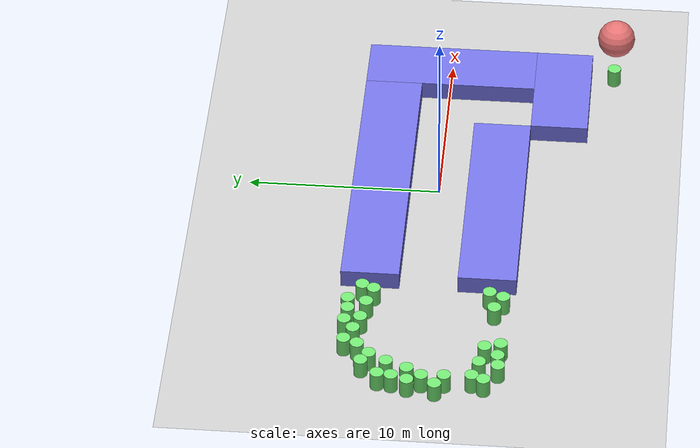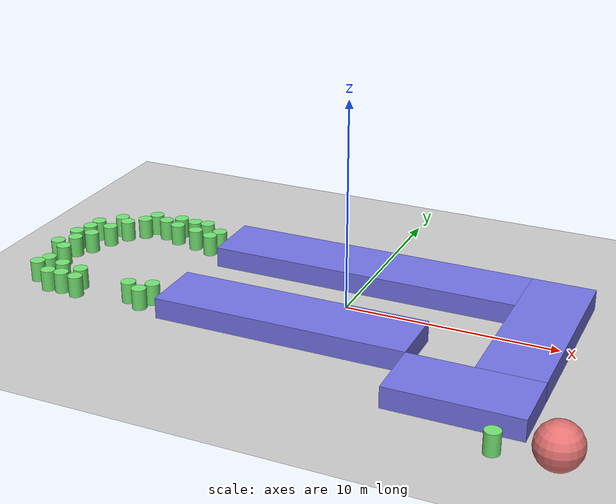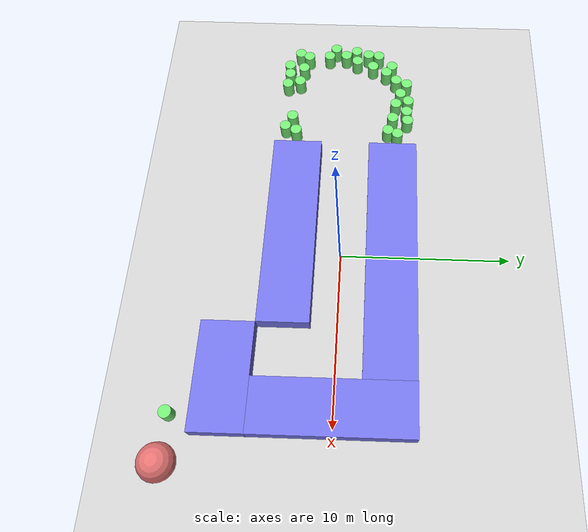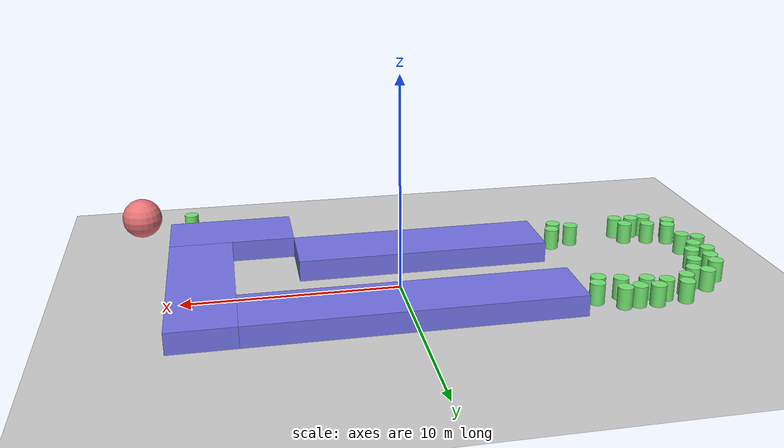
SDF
<?xml version="1.0" ?>
<sdf version="1.6">
  <world name="flat">

    <plugin
      filename="gz-sim-physics-system"
      name="gz::sim::systems::Physics">
    </plugin>
    <plugin
      filename="gz-sim-user-commands-system"
      name="gz::sim::systems::UserCommands">
    </plugin>
    <plugin
      filename="gz-sim-scene-broadcaster-system"
      name="gz::sim::systems::SceneBroadcaster">
    </plugin>
    <plugin
      filename="gz-sim-contact-system"
      name="gz::sim::systems::Contact">
    </plugin>

    <physics type="ode">
      <real_time_update_rate>1000.0</real_time_update_rate>
      <max_step_size>0.15</max_step_size>
      <real_time_factor>1</real_time_factor>
      <ode>
        <solver>
          <type>quick</type>
          <iters>50</iters>
          <precon_iters>0</precon_iters>
          <sor>1.400000</sor>
          <use_dynamic_moi_rescaling>1</use_dynamic_moi_rescaling>
        </solver>
        <constraints>
          <cfm>0.00001</cfm>
          <erp>0.2</erp>
          <contact_max_correcting_vel>2000.000000</contact_max_correcting_vel>
          <contact_surface_layer>0.01000</contact_surface_layer>
        </constraints>
      </ode>
    </physics>

    <include>
      <uri>
        https://fuel.gazebosim.org/1.0/OpenRobotics/models/Ground Plane
      </uri>
    </include>

    <include>
      <uri>
        https://fuel.gazebosim.org/1.0/OpenRobotics/models/Sun
      </uri>
      <pose>2 -10 10 0.8 -0.8 0</pose>
    </include>

    <spherical_coordinates>
      <surface_model>EARTH_WGS84</surface_model>
      <latitude_deg>38.406863</latitude_deg>
      <longitude_deg>-110.791055</longitude_deg>
      <elevation>1370.0</elevation>
      <heading_deg>180</heading_deg>
    </spherical_coordinates>

    <!-- Obstacle Course designed on 2025-01-10 by Victor and Co (Implemented by Anthony Lew) -->
    <!-- Corridor from screenshot x=vertical, y=horizontal (left = pos) 3m squares -->
    <!-- ___top_____
        |________|  |
        |  |   __|__| right_small
        |  |  |  |
        |  |cc|  |
   left |  |  | right
        |__|  |__|
    -->
    <model name='corridor'>
      <static>true</static>
      <pose>0 0 0.5 0 0 0</pose>
      <link name='corridor'>
        <collision name='collision_left'>
          <pose>0 3 0 0 0 0</pose>
          <geometry>
            <box>
              <size>15 3 1</size>
            </box>
          </geometry>
        </collision>
        <visual name='visual_left'>
          <pose>0 3 0 0 0 0</pose>
          <geometry>
            <box>
              <size>15 3 1</size>
            </box>
          </geometry>
          <material>
            <ambient>0.4 0.4 0.4 1</ambient>
            <diffuse>0.45 0.45 0.9 1</diffuse>
            <specular>0 0 0 0</specular>
            <emissive>0 0 0 1</emissive>
          </material>
        </visual>
        <collision name='collision_right'>
          <pose>-1.5 -3 0 0 0 0</pose>
          <geometry>
            <box>
              <size>12 3 1</size>
            </box>
          </geometry>
        </collision>
        <visual name='visual_right'>
          <pose>-1.5 -3 0 0 0 0</pose>
          <geometry>
            <box>
              <size>12 3 1</size>
            </box>
          </geometry>
          <material>
            <ambient>0.4 0.4 0.4 1</ambient>
            <diffuse>0.45 0.45 0.9 1</diffuse>
            <specular>0 0 0 0</specular>
            <emissive>0 0 0 1</emissive>
          </material>
        </visual>
        <collision name='collision_top'>
          <pose>9 0 0 0 0 0</pose>
          <geometry>
            <box>
              <size>3 9 1</size>
            </box>
          </geometry>
        </collision>
        <visual name='visual_top'>
          <pose>9 0 0 0 0 0</pose>
          <geometry>
            <box>
              <size>3 9 1</size>
            </box>
          </geometry>
          <material>
            <ambient>0.4 0.4 0.4 1</ambient>
            <diffuse>0.45 0.45 0.9 1</diffuse>
            <specular>0 0 0 0</specular>
            <emissive>0 0 0 1</emissive>
          </material>
        </visual>
        <collision name='collision_right_small'>
          <pose>7.5 -6 0 0 0 0</pose>
          <geometry>
            <box>
              <size>6 3 1</size>
            </box>
          </geometry>
        </collision>
        <visual name='visual_right_small'>
          <pose>7.5 -6 0 0 0 0</pose>
          <geometry>
            <box>
              <size>6 3 1</size>
            </box>
          </geometry>
          <material>
            <ambient>0.4 0.4 0.4 1</ambient>
            <diffuse>0.45 0.45 0.9 1</diffuse>
            <specular>0 0 0 0</specular>
            <emissive>0 0 0 1</emissive>
          </material>
        </visual>
      </link>
    </model>

    <model name='pole_wall_left'>
      <static>true</static>
      <pose>-8 0 0.5 0 0 0</pose>
      <link name='pole_1'>
        <pose>-0.3 3.3 0 0 0 0</pose>
        <collision name='collision'>
          <geometry>
            <cylinder>
              <radius>0.35</radius>
              <length>1</length>
            </cylinder>
          </geometry>
        </collision>
        <visual name='visual'>
          <geometry>
            <cylinder>
              <radius>0.35</radius>
              <length>1</length>
            </cylinder>
          </geometry>
          <material>
            <ambient>0.4 0.4 0.4 1</ambient>
            <diffuse>0.45 0.9 0.45 1</diffuse>
            <specular>0 0 0 0</specular>
            <emissive>0 0 0 1</emissive>
          </material>
        </visual>
      </link>
      <link name='pole_2'>
        <pose>-0.55 2.7 0 0 0 0</pose>
        <collision name='collision'>
          <geometry>
            <cylinder>
              <radius>0.35</radius>
              <length>1</length>
            </cylinder>
          </geometry>
        </collision>
        <visual name='visual'>
          <geometry>
            <cylinder>
              <radius>0.35</radius>
              <length>1</length>
            </cylinder>
          </geometry>
          <material>
            <ambient>0.4 0.4 0.4 1</ambient>
            <diffuse>0.45 0.9 0.45 1</diffuse>
            <specular>0 0 0 0</specular>
            <emissive>0 0 0 1</emissive>
          </material>
        </visual>
      </link>
      <link name='pole_3'>
        <pose>-1.3444 3.956 0 0 0 0</pose>
        <collision name='collision'>
          <geometry>
            <cylinder>
              <radius>0.35</radius>
              <length>1</length>
            </cylinder>
          </geometry>
        </collision>
        <visual name='visual'>
          <geometry>
            <cylinder>
              <radius>0.35</radius>
              <length>1</length>
            </cylinder>
          </geometry>
          <material>
            <ambient>0.4 0.4 0.4 1</ambient>
            <diffuse>0.45 0.9 0.45 1</diffuse>
            <specular>0 0 0 0</specular>
            <emissive>0 0 0 1</emissive>
          </material>
        </visual>
      </link>
      <link name='pole_4'>
        <pose>-1.53 3.0 0 0 0 0</pose>
        <collision name='collision'>
          <geometry>
            <cylinder>
              <radius>0.35</radius>
              <length>1</length>
            </cylinder>
          </geometry>
        </collision>
        <visual name='visual'>
          <geometry>
            <cylinder>
              <radius>0.35</radius>
              <length>1</length>
            </cylinder>
          </geometry>
          <material>
            <ambient>0.4 0.4 0.4 1</ambient>
            <diffuse>0.45 0.9 0.45 1</diffuse>
            <specular>0 0 0 0</specular>
            <emissive>0 0 0 1</emissive>
          </material>
        </visual>
      </link>
      <link name='pole_5'>
        <pose>-2.053 3.9 0 0 0 0</pose>
        <collision name='collision'>
          <geometry>
            <cylinder>
              <radius>0.35</radius>
              <length>1</length>
            </cylinder>
          </geometry>
        </collision>
        <visual name='visual'>
          <geometry>
            <cylinder>
              <radius>0.35</radius>
              <length>1</length>
            </cylinder>
          </geometry>
          <material>
            <ambient>0.4 0.4 0.4 1</ambient>
            <diffuse>0.45 0.9 0.45 1</diffuse>
            <specular>0 0 0 0</specular>
            <emissive>0 0 0 1</emissive>
          </material>
        </visual>
      </link>
      <link name='pole_6'>
        <pose>-2.665 3.2 0 0 0 0</pose>
        <collision name='collision'>
          <geometry>
            <cylinder>
              <radius>0.35</radius>
              <length>1</length>
            </cylinder>
          </geometry>
        </collision>
        <visual name='visual'>
          <geometry>
            <cylinder>
              <radius>0.35</radius>
              <length>1</length>
            </cylinder>
          </geometry>
          <material>
            <ambient>0.4 0.4 0.4 1</ambient>
            <diffuse>0.45 0.9 0.45 1</diffuse>
            <specular>0 0 0 0</specular>
            <emissive>0 0 0 1</emissive>
          </material>
        </visual>
      </link>
      <link name='pole_7'>
        <pose>-2.895 4 0 0 0 0</pose>
        <collision name='collision'>
          <geometry>
            <cylinder>
              <radius>0.35</radius>
              <length>1</length>
            </cylinder>
          </geometry>
        </collision>
        <visual name='visual'>
          <geometry>
            <cylinder>
              <radius>0.35</radius>
              <length>1</length>
            </cylinder>
          </geometry>
          <material>
            <ambient>0.4 0.4 0.4 1</ambient>
            <diffuse>0.45 0.9 0.45 1</diffuse>
            <specular>0 0 0 0</specular>
            <emissive>0 0 0 1</emissive>
          </material>
        </visual>
      </link>
      <link name='pole_8'>
        <pose>-3.5 3.5 0 0 0 0</pose>
        <collision name='collision'>
          <geometry>
            <cylinder>
              <radius>0.35</radius>
              <length>1</length>
            </cylinder>
          </geometry>
        </collision>
        <visual name='visual'>
          <geometry>
            <cylinder>
              <radius>0.35</radius>
              <length>1</length>
            </cylinder>
          </geometry>
          <material>
            <ambient>0.4 0.4 0.4 1</ambient>
            <diffuse>0.45 0.9 0.45 1</diffuse>
            <specular>0 0 0 0</specular>
            <emissive>0 0 0 1</emissive>
          </material>
        </visual>
      </link>
      <link name='pole_9'>
        <pose>-4.3 3.9 0 0 0 0</pose>
        <collision name='collision'>
          <geometry>
            <cylinder>
              <radius>0.35</radius>
              <length>1</length>
            </cylinder>
          </geometry>
        </collision>
        <visual name='visual'>
          <geometry>
            <cylinder>
              <radius>0.35</radius>
              <length>1</length>
            </cylinder>
          </geometry>
          <material>
            <ambient>0.4 0.4 0.4 1</ambient>
            <diffuse>0.45 0.9 0.45 1</diffuse>
            <specular>0 0 0 0</specular>
            <emissive>0 0 0 1</emissive>
          </material>
        </visual>
      </link>
      <link name='pole_10'>
        <pose>-4.6 3.2 0 0 0 0</pose>
        <collision name='collision'>
          <geometry>
            <cylinder>
              <radius>0.35</radius>
              <length>1</length>
            </cylinder>
          </geometry>
        </collision>
        <visual name='visual'>
          <geometry>
            <cylinder>
              <radius>0.35</radius>
              <length>1</length>
            </cylinder>
          </geometry>
          <material>
            <ambient>0.4 0.4 0.4 1</ambient>
            <diffuse>0.45 0.9 0.45 1</diffuse>
            <specular>0 0 0 0</specular>
            <emissive>0 0 0 1</emissive>
          </material>
        </visual>
      </link>
    </model>

    <model name='pole_wall_bottom'>
      <static>true</static>
      <pose>-10.5 2.55 0.5 0 0 1.3708</pose>
      <link name='pole_1'>
        <pose>-0.3 3.3 0 0 0 0</pose>
        <collision name='collision'>
          <geometry>
            <cylinder>
              <radius>0.35</radius>
              <length>1</length>
            </cylinder>
          </geometry>
        </collision>
        <visual name='visual'>
          <geometry>
            <cylinder>
              <radius>0.35</radius>
              <length>1</length>
            </cylinder>
          </geometry>
          <material>
            <ambient>0.4 0.4 0.4 1</ambient>
            <diffuse>0.45 0.9 0.45 1</diffuse>
            <specular>0 0 0 0</specular>
            <emissive>0 0 0 1</emissive>
          </material>
        </visual>
      </link>
      <link name='pole_2'>
        <pose>-0.55 2.7 0 0 0 0</pose>
        <collision name='collision'>
          <geometry>
            <cylinder>
              <radius>0.35</radius>
              <length>1</length>
            </cylinder>
          </geometry>
        </collision>
        <visual name='visual'>
          <geometry>
            <cylinder>
              <radius>0.35</radius>
              <length>1</length>
            </cylinder>
          </geometry>
          <material>
            <ambient>0.4 0.4 0.4 1</ambient>
            <diffuse>0.45 0.9 0.45 1</diffuse>
            <specular>0 0 0 0</specular>
            <emissive>0 0 0 1</emissive>
          </material>
        </visual>
      </link>
      <link name='pole_3'>
        <pose>-1.3444 3.956 0 0 0 0</pose>
        <collision name='collision'>
          <geometry>
            <cylinder>
              <radius>0.35</radius>
              <length>1</length>
            </cylinder>
          </geometry>
        </collision>
        <visual name='visual'>
          <geometry>
            <cylinder>
              <radius>0.35</radius>
              <length>1</length>
            </cylinder>
          </geometry>
          <material>
            <ambient>0.4 0.4 0.4 1</ambient>
            <diffuse>0.45 0.9 0.45 1</diffuse>
            <specular>0 0 0 0</specular>
            <emissive>0 0 0 1</emissive>
          </material>
        </visual>
      </link>
      <link name='pole_4'>
        <pose>-1.53 3.0 0 0 0 0</pose>
        <collision name='collision'>
          <geometry>
            <cylinder>
              <radius>0.35</radius>
              <length>1</length>
            </cylinder>
          </geometry>
        </collision>
        <visual name='visual'>
          <geometry>
            <cylinder>
              <radius>0.35</radius>
              <length>1</length>
            </cylinder>
          </geometry>
          <material>
            <ambient>0.4 0.4 0.4 1</ambient>
            <diffuse>0.45 0.9 0.45 1</diffuse>
            <specular>0 0 0 0</specular>
            <emissive>0 0 0 1</emissive>
          </material>
        </visual>
      </link>
      <link name='pole_5'>
        <pose>-2.053 3.9 0 0 0 0</pose>
        <collision name='collision'>
          <geometry>
            <cylinder>
              <radius>0.35</radius>
              <length>1</length>
            </cylinder>
          </geometry>
        </collision>
        <visual name='visual'>
          <geometry>
            <cylinder>
              <radius>0.35</radius>
              <length>1</length>
            </cylinder>
          </geometry>
          <material>
            <ambient>0.4 0.4 0.4 1</ambient>
            <diffuse>0.45 0.9 0.45 1</diffuse>
            <specular>0 0 0 0</specular>
            <emissive>0 0 0 1</emissive>
          </material>
        </visual>
      </link>
      <link name='pole_6'>
        <pose>-2.665 3.2 0 0 0 0</pose>
        <collision name='collision'>
          <geometry>
            <cylinder>
              <radius>0.35</radius>
              <length>1</length>
            </cylinder>
          </geometry>
        </collision>
        <visual name='visual'>
          <geometry>
            <cylinder>
              <radius>0.35</radius>
              <length>1</length>
            </cylinder>
          </geometry>
          <material>
            <ambient>0.4 0.4 0.4 1</ambient>
            <diffuse>0.45 0.9 0.45 1</diffuse>
            <specular>0 0 0 0</specular>
            <emissive>0 0 0 1</emissive>
          </material>
        </visual>
      </link>
      <link name='pole_7'>
        <pose>-2.895 4 0 0 0 0</pose>
        <collision name='collision'>
          <geometry>
            <cylinder>
              <radius>0.35</radius>
              <length>1</length>
            </cylinder>
          </geometry>
        </collision>
        <visual name='visual'>
          <geometry>
            <cylinder>
              <radius>0.35</radius>
              <length>1</length>
            </cylinder>
          </geometry>
          <material>
            <ambient>0.4 0.4 0.4 1</ambient>
            <diffuse>0.45 0.9 0.45 1</diffuse>
            <specular>0 0 0 0</specular>
            <emissive>0 0 0 1</emissive>
          </material>
        </visual>
      </link>
      <link name='pole_8'>
        <pose>-3.5 3.5 0 0 0 0</pose>
        <collision name='collision'>
          <geometry>
            <cylinder>
              <radius>0.35</radius>
              <length>1</length>
            </cylinder>
          </geometry>
        </collision>
        <visual name='visual'>
          <geometry>
            <cylinder>
              <radius>0.35</radius>
              <length>1</length>
            </cylinder>
          </geometry>
          <material>
            <ambient>0.4 0.4 0.4 1</ambient>
            <diffuse>0.45 0.9 0.45 1</diffuse>
            <specular>0 0 0 0</specular>
            <emissive>0 0 0 1</emissive>
          </material>
        </visual>
      </link>
      <link name='pole_9'>
        <pose>-4.3 3.9 0 0 0 0</pose>
        <collision name='collision'>
          <geometry>
            <cylinder>
              <radius>0.35</radius>
              <length>1</length>
            </cylinder>
          </geometry>
        </collision>
        <visual name='visual'>
          <geometry>
            <cylinder>
              <radius>0.35</radius>
              <length>1</length>
            </cylinder>
          </geometry>
          <material>
            <ambient>0.4 0.4 0.4 1</ambient>
            <diffuse>0.45 0.9 0.45 1</diffuse>
            <specular>0 0 0 0</specular>
            <emissive>0 0 0 1</emissive>
          </material>
        </visual>
      </link>
      <link name='pole_10'>
        <pose>-4.6 3.2 0 0 0 0</pose>
        <collision name='collision'>
          <geometry>
            <cylinder>
              <radius>0.35</radius>
              <length>1</length>
            </cylinder>
          </geometry>
        </collision>
        <visual name='visual'>
          <geometry>
            <cylinder>
              <radius>0.35</radius>
              <length>1</length>
            </cylinder>
          </geometry>
          <material>
            <ambient>0.4 0.4 0.4 1</ambient>
            <diffuse>0.45 0.9 0.45 1</diffuse>
            <specular>0 0 0 0</specular>
            <emissive>0 0 0 1</emissive>
          </material>
        </visual>
      </link>
    </model>

    <model name='pole_wall_right'>
      <static>true</static>
      <pose>-15 0 0.5 0 0 3.1415</pose>
      <link name='pole_1'>
        <pose>-0.3 3.3 0 0 0 0</pose>
        <collision name='collision'>
          <geometry>
            <cylinder>
              <radius>0.35</radius>
              <length>1</length>
            </cylinder>
          </geometry>
        </collision>
        <visual name='visual'>
          <geometry>
            <cylinder>
              <radius>0.35</radius>
              <length>1</length>
            </cylinder>
          </geometry>
          <material>
            <ambient>0.4 0.4 0.4 1</ambient>
            <diffuse>0.45 0.9 0.45 1</diffuse>
            <specular>0 0 0 0</specular>
            <emissive>0 0 0 1</emissive>
          </material>
        </visual>
      </link>
      <link name='pole_2'>
        <pose>-0.55 2.7 0 0 0 0</pose>
        <collision name='collision'>
          <geometry>
            <cylinder>
              <radius>0.35</radius>
              <length>1</length>
            </cylinder>
          </geometry>
        </collision>
        <visual name='visual'>
          <geometry>
            <cylinder>
              <radius>0.35</radius>
              <length>1</length>
            </cylinder>
          </geometry>
          <material>
            <ambient>0.4 0.4 0.4 1</ambient>
            <diffuse>0.45 0.9 0.45 1</diffuse>
            <specular>0 0 0 0</specular>
            <emissive>0 0 0 1</emissive>
          </material>
        </visual>
      </link>
      <link name='pole_3'>
        <pose>-1.3444 3.956 0 0 0 0</pose>
        <collision name='collision'>
          <geometry>
            <cylinder>
              <radius>0.35</radius>
              <length>1</length>
            </cylinder>
          </geometry>
        </collision>
        <visual name='visual'>
          <geometry>
            <cylinder>
              <radius>0.35</radius>
              <length>1</length>
            </cylinder>
          </geometry>
          <material>
            <ambient>0.4 0.4 0.4 1</ambient>
            <diffuse>0.45 0.9 0.45 1</diffuse>
            <specular>0 0 0 0</specular>
            <emissive>0 0 0 1</emissive>
          </material>
        </visual>
      </link>
      <link name='pole_4'>
        <pose>-1.53 3.0 0 0 0 0</pose>
        <collision name='collision'>
          <geometry>
            <cylinder>
              <radius>0.35</radius>
              <length>1</length>
            </cylinder>
          </geometry>
        </collision>
        <visual name='visual'>
          <geometry>
            <cylinder>
              <radius>0.35</radius>
              <length>1</length>
            </cylinder>
          </geometry>
          <material>
            <ambient>0.4 0.4 0.4 1</ambient>
            <diffuse>0.45 0.9 0.45 1</diffuse>
            <specular>0 0 0 0</specular>
            <emissive>0 0 0 1</emissive>
          </material>
        </visual>
      </link>
      <link name='pole_5'>
        <pose>-2.053 3.9 0 0 0 0</pose>
        <collision name='collision'>
          <geometry>
            <cylinder>
              <radius>0.35</radius>
              <length>1</length>
            </cylinder>
          </geometry>
        </collision>
        <visual name='visual'>
          <geometry>
            <cylinder>
              <radius>0.35</radius>
              <length>1</length>
            </cylinder>
          </geometry>
          <material>
            <ambient>0.4 0.4 0.4 1</ambient>
            <diffuse>0.45 0.9 0.45 1</diffuse>
            <specular>0 0 0 0</specular>
            <emissive>0 0 0 1</emissive>
          </material>
        </visual>
      </link>
      <link name='pole_6'>
        <pose>-2.665 3.2 0 0 0 0</pose>
        <collision name='collision'>
          <geometry>
            <cylinder>
              <radius>0.35</radius>
              <length>1</length>
            </cylinder>
          </geometry>
        </collision>
        <visual name='visual'>
          <geometry>
            <cylinder>
              <radius>0.35</radius>
              <length>1</length>
            </cylinder>
          </geometry>
          <material>
            <ambient>0.4 0.4 0.4 1</ambient>
            <diffuse>0.45 0.9 0.45 1</diffuse>
            <specular>0 0 0 0</specular>
            <emissive>0 0 0 1</emissive>
          </material>
        </visual>
      </link>
      <link name='pole_7'>
        <pose>-2.895 4 0 0 0 0</pose>
        <collision name='collision'>
          <geometry>
            <cylinder>
              <radius>0.35</radius>
              <length>1</length>
            </cylinder>
          </geometry>
        </collision>
        <visual name='visual'>
          <geometry>
            <cylinder>
              <radius>0.35</radius>
              <length>1</length>
            </cylinder>
          </geometry>
          <material>
            <ambient>0.4 0.4 0.4 1</ambient>
            <diffuse>0.45 0.9 0.45 1</diffuse>
            <specular>0 0 0 0</specular>
            <emissive>0 0 0 1</emissive>
          </material>
        </visual>
      </link>
      <link name='pole_8'>
        <pose>-5.5 3.5 0 0 0 0</pose>
        <collision name='collision'>
          <geometry>
            <cylinder>
              <radius>0.35</radius>
              <length>1</length>
            </cylinder>
          </geometry>
        </collision>
        <visual name='visual'>
          <geometry>
            <cylinder>
              <radius>0.35</radius>
              <length>1</length>
            </cylinder>
          </geometry>
          <material>
            <ambient>0.4 0.4 0.4 1</ambient>
            <diffuse>0.45 0.9 0.45 1</diffuse>
            <specular>0 0 0 0</specular>
            <emissive>0 0 0 1</emissive>
          </material>
        </visual>
      </link>
      <link name='pole_9'>
        <pose>-6.3 3.9 0 0 0 0</pose>
        <collision name='collision'>
          <geometry>
            <cylinder>
              <radius>0.35</radius>
              <length>1</length>
            </cylinder>
          </geometry>
        </collision>
        <visual name='visual'>
          <geometry>
            <cylinder>
              <radius>0.35</radius>
              <length>1</length>
            </cylinder>
          </geometry>
          <material>
            <ambient>0.4 0.4 0.4 1</ambient>
            <diffuse>0.45 0.9 0.45 1</diffuse>
            <specular>0 0 0 0</specular>
            <emissive>0 0 0 1</emissive>
          </material>
        </visual>
      </link>
      <link name='pole_10'>
        <pose>-6.6 3.2 0 0 0 0</pose>
        <collision name='collision'>
          <geometry>
            <cylinder>
              <radius>0.35</radius>
              <length>1</length>
            </cylinder>
          </geometry>
        </collision>
        <visual name='visual'>
          <geometry>
            <cylinder>
              <radius>0.35</radius>
              <length>1</length>
            </cylinder>
          </geometry>
          <material>
            <ambient>0.4 0.4 0.4 1</ambient>
            <diffuse>0.45 0.9 0.45 1</diffuse>
            <specular>0 0 0 0</specular>
            <emissive>0 0 0 1</emissive>
          </material>
        </visual>
      </link>
    </model>

    <model name='lonely_pole'>
      <pose>9.5 -8.7 0.5 0 0 0</pose>
      <link name='lone_pole'>
        <collision name='collision'>
          <geometry>
            <cylinder>
              <radius>0.35</radius>
              <length>1</length>
            </cylinder>
          </geometry>
        </collision>
        <visual name='visual'>
          <geometry>
            <cylinder>
              <radius>0.35</radius>
              <length>1</length>
            </cylinder>
          </geometry>
          <material>
            <ambient>0.4 0.4 0.4 1</ambient>
            <diffuse>0.45 0.9 0.45 1</diffuse>
            <specular>0 0 0 0</specular>
            <emissive>0 0 0 1</emissive>
          </material>
        </visual>
      </link>
    </model>

    <model name='goal'>
      <static>true</static>
      <pose>12 -8.7 1 0 0 0</pose>
      <link name='goal_link'>
        <collision name='collision'>
          <geometry>
            <cylinder>
              <radius>0.001</radius>
              <length>2</length>
            </cylinder>
          </geometry>
        </collision>
        <visual name='visual'>
          <geometry>
            <sphere>
              <radius>1</radius>
            </sphere>
          </geometry>
          <material>
            <ambient>0.4 0.4 0.4 1</ambient>
            <diffuse>0.9 0.45 0.45 1</diffuse>
            <specular>0 0 0 0</specular>
            <emissive>0 0 0 1</emissive>
          </material>
        </visual>
      </link>
    </model>

    <scene>
      <shadows>true</shadows>
    </scene>

    <gui fullscreen='0'>
      <camera name='user_camera'>
        <pose frame=''>0 0 15 0 1.570796 0</pose>
        <view_controller>orbit</view_controller>
        <projection_type>perspective</projection_type>
      </camera>
    </gui>

  </world>
</sdf>
